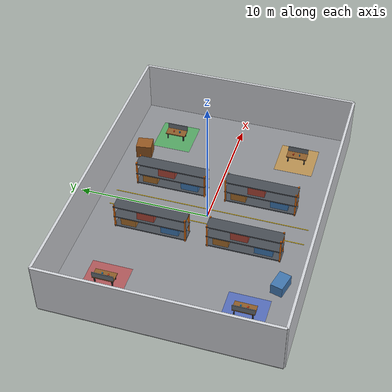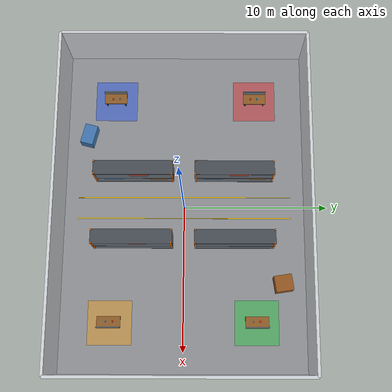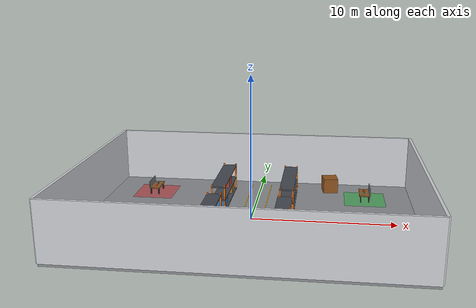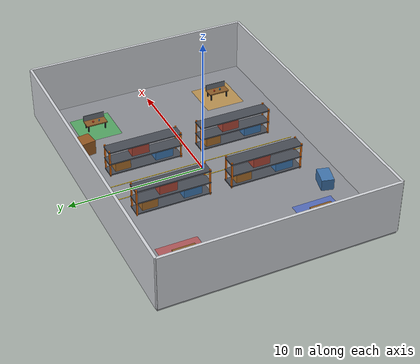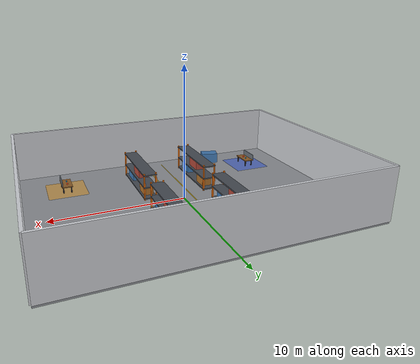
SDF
<?xml version="1.0"?>
<sdf version="1.8">
  <world name="scout_pick_place_warehouse">
    <gravity>0 0 -9.81</gravity>
    <physics name="1ms" type="ignored">
      <max_step_size>0.001</max_step_size>
      <real_time_factor>1.0</real_time_factor>
    </physics>

    <plugin filename="ignition-gazebo-physics-system" name="ignition::gazebo::systems::Physics"/>
    <plugin filename="ignition-gazebo-user-commands-system" name="ignition::gazebo::systems::UserCommands"/>
    <plugin filename="ignition-gazebo-scene-broadcaster-system" name="ignition::gazebo::systems::SceneBroadcaster"/>

    <scene>
      <ambient>0.45 0.45 0.48 1</ambient>
      <background>0.12 0.14 0.17 1</background>
      <shadows>true</shadows>
    </scene>

    <light name="warehouse_sun" type="directional">
      <cast_shadows>true</cast_shadows>
      <pose>0 0 10 0 0 0</pose>
      <diffuse>0.75 0.75 0.72 1</diffuse>
      <specular>0.20 0.20 0.20 1</specular>
      <direction>-0.25 0.15 -1.0</direction>
    </light>
    <light name="ceiling_light_north" type="point">
      <pose>0 4.5 5.5 0 0 0</pose><diffuse>0.9 0.9 0.85 1</diffuse>
      <attenuation><range>25</range><constant>0.5</constant><linear>0.02</linear><quadratic>0.001</quadratic></attenuation>
    </light>
    <light name="ceiling_light_south" type="point">
      <pose>0 -4.5 5.5 0 0 0</pose><diffuse>0.9 0.9 0.85 1</diffuse>
      <attenuation><range>25</range><constant>0.5</constant><linear>0.02</linear><quadratic>0.001</quadratic></attenuation>
    </light>

    <!-- 23 x 17 m enclosed warehouse shell. -->
    <model name="warehouse_shell">
      <static>true</static>
      <link name="shell">
        <collision name="floor_collision"><pose>0 0 -0.10 0 0 0</pose><geometry><box><size>23 17 0.20</size></box></geometry></collision>
        <visual name="floor_visual"><pose>0 0 -0.10 0 0 0</pose><geometry><box><size>23 17 0.20</size></box></geometry><material><ambient>0.42 0.43 0.44 1</ambient><diffuse>0.55 0.56 0.58 1</diffuse><specular>0.05 0.05 0.05 1</specular></material></visual>

        <collision name="wall_west_collision"><pose>-11.5 0 2.0 0 0 0</pose><geometry><box><size>0.20 17 4.0</size></box></geometry></collision>
        <visual name="wall_west_visual"><pose>-11.5 0 2.0 0 0 0</pose><geometry><box><size>0.20 17 4.0</size></box></geometry><material><ambient>0.72 0.73 0.75 1</ambient><diffuse>0.82 0.83 0.85 1</diffuse></material></visual>
        <collision name="wall_east_collision"><pose>11.5 0 2.0 0 0 0</pose><geometry><box><size>0.20 17 4.0</size></box></geometry></collision>
        <visual name="wall_east_visual"><pose>11.5 0 2.0 0 0 0</pose><geometry><box><size>0.20 17 4.0</size></box></geometry><material><ambient>0.72 0.73 0.75 1</ambient><diffuse>0.82 0.83 0.85 1</diffuse></material></visual>
        <collision name="wall_north_collision"><pose>0 8.5 2.0 0 0 0</pose><geometry><box><size>23 0.20 4.0</size></box></geometry></collision>
        <visual name="wall_north_visual"><pose>0 8.5 2.0 0 0 0</pose><geometry><box><size>23 0.20 4.0</size></box></geometry><material><ambient>0.72 0.73 0.75 1</ambient><diffuse>0.82 0.83 0.85 1</diffuse></material></visual>
        <collision name="wall_south_collision"><pose>0 -8.5 2.0 0 0 0</pose><geometry><box><size>23 0.20 4.0</size></box></geometry></collision>
        <visual name="wall_south_visual"><pose>0 -8.5 2.0 0 0 0</pose><geometry><box><size>23 0.20 4.0</size></box></geometry><material><ambient>0.72 0.73 0.75 1</ambient><diffuse>0.82 0.83 0.85 1</diffuse></material></visual>

        <!-- Yellow perimeter and aisle markings. -->
        <visual name="center_aisle_left"><pose>-0.75 0 0.006 0 0 0</pose><geometry><box><size>0.06 15.0 0.01</size></box></geometry><material><ambient>0.95 0.72 0.03 1</ambient><diffuse>1.0 0.82 0.04 1</diffuse></material></visual>
        <visual name="center_aisle_right"><pose>0.75 0 0.006 0 0 0</pose><geometry><box><size>0.06 15.0 0.01</size></box></geometry><material><ambient>0.95 0.72 0.03 1</ambient><diffuse>1.0 0.82 0.04 1</diffuse></material></visual>
      </link>
    </model>

    <!-- Central pallet racks leave a wide loop and a center aisle for Nav2. -->
    <include><uri>model://warehouse_rack</uri><name>rack_west_north</name><pose>-2.4 3.5 0 0 0 0</pose></include>
    <include><uri>model://warehouse_rack</uri><name>rack_west_south</name><pose>-2.4 -3.5 0 0 0 0</pose></include>
    <include><uri>model://warehouse_rack</uri><name>rack_east_north</name><pose>2.4 3.5 0 0 0 0</pose></include>
    <include><uri>model://warehouse_rack</uri><name>rack_east_south</name><pose>2.4 -3.5 0 0 0 0</pose></include>

    <!-- Four 0.57 m workcells. Left cells face east, right cells face west. -->
    <include><uri>model://workcell_table</uri><name>workcell_A_table</name><pose>-8.0 5.0 0 0 0 0</pose></include>
    <include><uri>model://workcell_table</uri><name>workcell_B_table</name><pose>-8.0 -5.0 0 0 0 0</pose></include>
    <include><uri>model://workcell_table</uri><name>workcell_C_table</name><pose>8.0 5.0 0 0 0 3.14159</pose></include>
    <include><uri>model://workcell_table</uri><name>workcell_D_table</name><pose>8.0 -5.0 0 0 0 3.14159</pose></include>

    <!-- Colored 3 x 3 m floor zones identify A(red), B(blue), C(green), D(amber). -->
    <model name="zone_A_floor"><static>true</static><pose>-8.0 5.0 0.008 0 0 0</pose><link name="zone"><visual name="visual"><geometry><box><size>3.0 3.0 0.012</size></box></geometry><material><ambient>0.55 0.06 0.06 0.45</ambient><diffuse>0.90 0.12 0.12 0.45</diffuse></material><transparency>0.45</transparency></visual></link></model>
    <model name="zone_B_floor"><static>true</static><pose>-8.0 -5.0 0.008 0 0 0</pose><link name="zone"><visual name="visual"><geometry><box><size>3.0 3.0 0.012</size></box></geometry><material><ambient>0.05 0.18 0.60 0.45</ambient><diffuse>0.10 0.30 0.95 0.45</diffuse></material><transparency>0.45</transparency></visual></link></model>
    <model name="zone_C_floor"><static>true</static><pose>8.0 5.0 0.008 0 0 0</pose><link name="zone"><visual name="visual"><geometry><box><size>3.0 3.0 0.012</size></box></geometry><material><ambient>0.04 0.48 0.10 0.45</ambient><diffuse>0.10 0.80 0.20 0.45</diffuse></material><transparency>0.45</transparency></visual></link></model>
    <model name="zone_D_floor"><static>true</static><pose>8.0 -5.0 0.008 0 0 0</pose><link name="zone"><visual name="visual"><geometry><box><size>3.0 3.0 0.012</size></box></geometry><material><ambient>0.65 0.35 0.03 0.45</ambient><diffuse>0.98 0.62 0.05 0.45</diffuse></material><transparency>0.45</transparency></visual></link></model>

    <!-- Dynamic objects are separate entities, ready for a future attach/grasp plugin. -->
    <include><uri>model://pick_box</uri><name>A_red_box_1</name><pose>-7.95 4.72 0.62 0 0 0.20</pose></include>
    <include><uri>model://pick_cylinder</uri><name>A_blue_cylinder_1</name><pose>-7.95 5.18 0.635 0 0 0</pose></include>
    <include><uri>model://pick_box</uri><name>B_red_box_1</name><pose>-7.95 -5.20 0.62 0 0 -0.35</pose></include>
    <include><uri>model://pick_cylinder</uri><name>B_blue_cylinder_1</name><pose>-7.95 -4.72 0.635 0 0 0</pose></include>
    <include><uri>model://pick_box</uri><name>C_red_box_1</name><pose>7.95 5.20 0.62 0 0 0.15</pose></include>
    <include><uri>model://pick_cylinder</uri><name>C_blue_cylinder_1</name><pose>7.95 4.72 0.635 0 0 0</pose></include>
    <include><uri>model://pick_box</uri><name>D_red_box_1</name><pose>7.95 -4.72 0.62 0 0 -0.20</pose></include>
    <include><uri>model://pick_cylinder</uri><name>D_blue_cylinder_1</name><pose>7.95 -5.20 0.635 0 0 0</pose></include>

    <!-- Small pallet stacks make the map less symmetric and improve SLAM loop closure. -->
    <model name="pallet_stack_north"><static>true</static><pose>5.4 6.8 0 0 0 0.15</pose><link name="stack"><collision name="collision"><pose>0 0 0.55 0 0 0</pose><geometry><box><size>1.1 1.2 1.1</size></box></geometry></collision><visual name="visual"><pose>0 0 0.55 0 0 0</pose><geometry><box><size>1.1 1.2 1.1</size></box></geometry><material><ambient>0.38 0.22 0.10 1</ambient><diffuse>0.58 0.34 0.13 1</diffuse></material></visual></link></model>
    <model name="pallet_stack_south"><static>true</static><pose>-5.2 -6.8 0 0 0 -0.25</pose><link name="stack"><collision name="collision"><pose>0 0 0.42 0 0 0</pose><geometry><box><size>1.4 0.9 0.84</size></box></geometry></collision><visual name="visual"><pose>0 0 0.42 0 0 0</pose><geometry><box><size>1.4 0.9 0.84</size></box></geometry><material><ambient>0.18 0.34 0.52 1</ambient><diffuse>0.25 0.46 0.68 1</diffuse></material></visual></link></model>

    <gui fullscreen="false">
      <camera name="warehouse_overview">
        <pose>15 -17 16 0 0.58 2.30</pose>
        <view_controller>orbit</view_controller>
        <projection_type>perspective</projection_type>
      </camera>
    </gui>
  </world>
</sdf>

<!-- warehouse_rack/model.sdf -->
<sdf version="1.8">
  <model name="warehouse_rack">
    <static>true</static>
    <link name="rack">
      <collision name="rack_envelope">
        <pose>0 0 1.05 0 0 0</pose>
        <geometry><box><size>1.0 5.5 2.1</size></box></geometry>
      </collision>

      <visual name="shelf_bottom"><pose>0 0 0.12 0 0 0</pose><geometry><box><size>1.0 5.5 0.10</size></box></geometry><material><ambient>0.20 0.22 0.24 1</ambient><diffuse>0.28 0.30 0.33 1</diffuse></material></visual>
      <visual name="shelf_middle"><pose>0 0 1.00 0 0 0</pose><geometry><box><size>1.0 5.5 0.10</size></box></geometry><material><ambient>0.20 0.22 0.24 1</ambient><diffuse>0.28 0.30 0.33 1</diffuse></material></visual>
      <visual name="shelf_top"><pose>0 0 1.95 0 0 0</pose><geometry><box><size>1.0 5.5 0.10</size></box></geometry><material><ambient>0.20 0.22 0.24 1</ambient><diffuse>0.28 0.30 0.33 1</diffuse></material></visual>

      <visual name="post_1"><pose>-0.45 -2.68 1.05 0 0 0</pose><geometry><box><size>0.10 0.10 2.10</size></box></geometry><material><ambient>0.80 0.35 0.04 1</ambient><diffuse>0.95 0.45 0.06 1</diffuse></material></visual>
      <visual name="post_2"><pose>0.45 -2.68 1.05 0 0 0</pose><geometry><box><size>0.10 0.10 2.10</size></box></geometry><material><ambient>0.80 0.35 0.04 1</ambient><diffuse>0.95 0.45 0.06 1</diffuse></material></visual>
      <visual name="post_3"><pose>-0.45 2.68 1.05 0 0 0</pose><geometry><box><size>0.10 0.10 2.10</size></box></geometry><material><ambient>0.80 0.35 0.04 1</ambient><diffuse>0.95 0.45 0.06 1</diffuse></material></visual>
      <visual name="post_4"><pose>0.45 2.68 1.05 0 0 0</pose><geometry><box><size>0.10 0.10 2.10</size></box></geometry><material><ambient>0.80 0.35 0.04 1</ambient><diffuse>0.95 0.45 0.06 1</diffuse></material></visual>

      <visual name="cargo_1"><pose>0 1.70 0.58 0 0 0</pose><geometry><box><size>0.75 1.15 0.75</size></box></geometry><material><ambient>0.48 0.31 0.12 1</ambient><diffuse>0.68 0.44 0.17 1</diffuse></material></visual>
      <visual name="cargo_2"><pose>0 -1.45 0.55 0 0 0</pose><geometry><box><size>0.72 1.35 0.65</size></box></geometry><material><ambient>0.18 0.34 0.52 1</ambient><diffuse>0.24 0.48 0.72 1</diffuse></material></visual>
      <visual name="cargo_3"><pose>0 0.35 1.48 0 0 0</pose><geometry><box><size>0.76 1.30 0.72</size></box></geometry><material><ambient>0.48 0.20 0.16 1</ambient><diffuse>0.70 0.28 0.22 1</diffuse></material></visual>
    </link>
  </model>
</sdf>

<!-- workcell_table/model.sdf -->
<sdf version="1.8">
  <model name="workcell_table">
    <static>true</static>
    <link name="table">
      <collision name="top_collision">
        <pose>0 0 0.53 0 0 0</pose>
        <geometry><box><size>0.80 1.60 0.08</size></box></geometry>
      </collision>
      <visual name="top_visual">
        <pose>0 0 0.53 0 0 0</pose>
        <geometry><box><size>0.80 1.60 0.08</size></box></geometry>
        <material><ambient>0.38 0.25 0.12 1</ambient><diffuse>0.55 0.36 0.16 1</diffuse><specular>0.08 0.08 0.08 1</specular></material>
      </visual>

      <collision name="leg_fl_collision"><pose>-0.30 0.65 0.245 0 0 0</pose><geometry><box><size>0.08 0.08 0.49</size></box></geometry></collision>
      <collision name="leg_fr_collision"><pose>-0.30 -0.65 0.245 0 0 0</pose><geometry><box><size>0.08 0.08 0.49</size></box></geometry></collision>
      <collision name="leg_rl_collision"><pose>0.30 0.65 0.245 0 0 0</pose><geometry><box><size>0.08 0.08 0.49</size></box></geometry></collision>
      <collision name="leg_rr_collision"><pose>0.30 -0.65 0.245 0 0 0</pose><geometry><box><size>0.08 0.08 0.49</size></box></geometry></collision>

      <visual name="leg_fl_visual"><pose>-0.30 0.65 0.245 0 0 0</pose><geometry><box><size>0.08 0.08 0.49</size></box></geometry><material><ambient>0.12 0.12 0.13 1</ambient><diffuse>0.18 0.18 0.20 1</diffuse></material></visual>
      <visual name="leg_fr_visual"><pose>-0.30 -0.65 0.245 0 0 0</pose><geometry><box><size>0.08 0.08 0.49</size></box></geometry><material><ambient>0.12 0.12 0.13 1</ambient><diffuse>0.18 0.18 0.20 1</diffuse></material></visual>
      <visual name="leg_rl_visual"><pose>0.30 0.65 0.245 0 0 0</pose><geometry><box><size>0.08 0.08 0.49</size></box></geometry><material><ambient>0.12 0.12 0.13 1</ambient><diffuse>0.18 0.18 0.20 1</diffuse></material></visual>
      <visual name="leg_rr_visual"><pose>0.30 -0.65 0.245 0 0 0</pose><geometry><box><size>0.08 0.08 0.49</size></box></geometry><material><ambient>0.12 0.12 0.13 1</ambient><diffuse>0.18 0.18 0.20 1</diffuse></material></visual>

      <collision name="backstop_collision">
        <pose>-0.36 0 0.79 0 0 0</pose>
        <geometry><box><size>0.06 1.60 0.44</size></box></geometry>
      </collision>
      <visual name="backstop_visual">
        <pose>-0.36 0 0.79 0 0 0</pose>
        <geometry><box><size>0.06 1.60 0.44</size></box></geometry>
        <material><ambient>0.30 0.32 0.34 1</ambient><diffuse>0.42 0.45 0.48 1</diffuse></material>
      </visual>
    </link>
  </model>
</sdf>

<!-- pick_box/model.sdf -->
<sdf version="1.8">
  <model name="pick_box">
    <link name="box">
      <inertial>
        <mass>0.20</mass>
        <inertia><ixx>0.00022</ixx><iyy>0.00028</iyy><izz>0.00032</izz></inertia>
      </inertial>
      <collision name="collision">
        <geometry><box><size>0.12 0.08 0.10</size></box></geometry>
        <surface><friction><ode><mu>0.9</mu><mu2>0.9</mu2></ode></friction></surface>
      </collision>
      <visual name="visual">
        <geometry><box><size>0.12 0.08 0.10</size></box></geometry>
        <material><ambient>0.72 0.16 0.08 1</ambient><diffuse>0.95 0.24 0.10 1</diffuse></material>
      </visual>
    </link>
  </model>
</sdf>

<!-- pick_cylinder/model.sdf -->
<sdf version="1.8">
  <model name="pick_cylinder">
    <link name="cylinder">
      <inertial>
        <mass>0.15</mass>
        <inertia><ixx>0.00018</ixx><iyy>0.00018</iyy><izz>0.00008</izz></inertia>
      </inertial>
      <collision name="collision">
        <geometry><cylinder><radius>0.045</radius><length>0.13</length></cylinder></geometry>
        <surface><friction><ode><mu>0.9</mu><mu2>0.9</mu2></ode></friction></surface>
      </collision>
      <visual name="visual">
        <geometry><cylinder><radius>0.045</radius><length>0.13</length></cylinder></geometry>
        <material><ambient>0.08 0.45 0.72 1</ambient><diffuse>0.10 0.62 0.95 1</diffuse></material>
      </visual>
    </link>
  </model>
</sdf>
